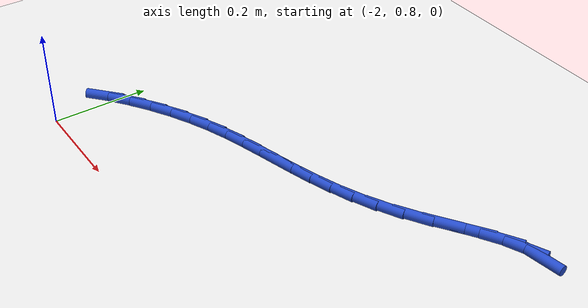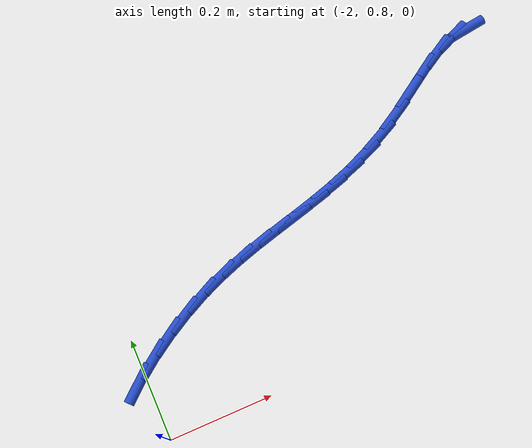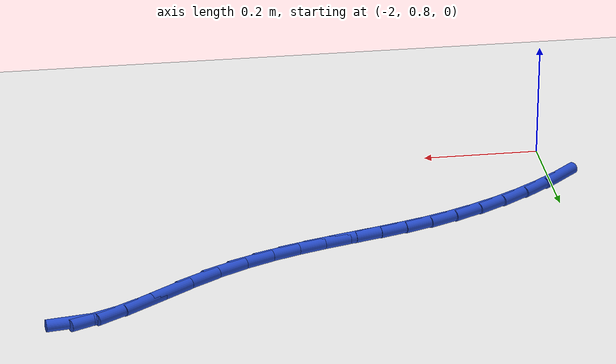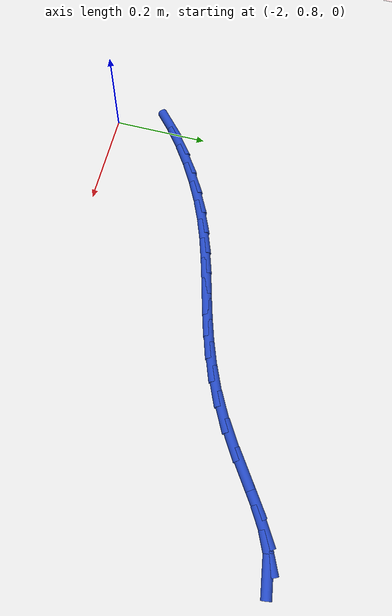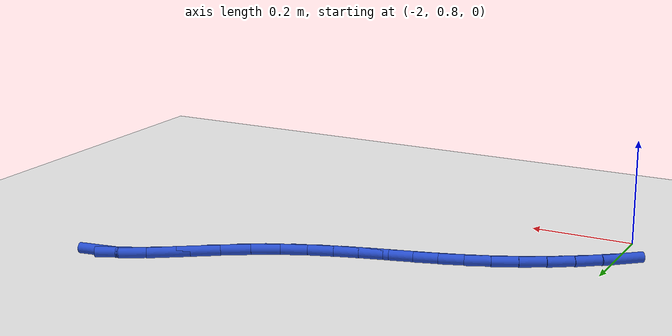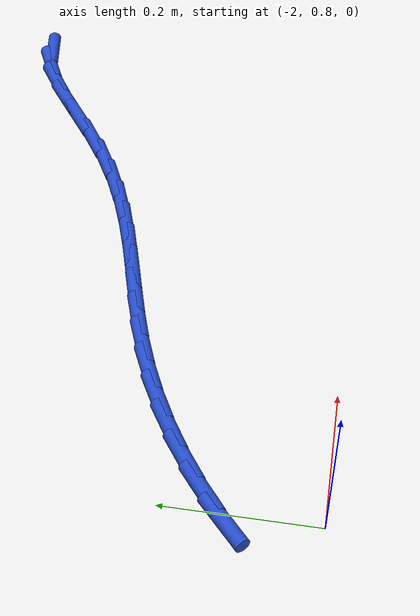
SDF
<sdf version="1.6">
 <world name="default">
  <model name="ground_plane">
   <static>1</static>
   <link name="link">
    <collision name="collision">
     <geometry><plane><normal>0 0 1</normal><size>100 100</size></plane></geometry>
     <surface><friction><ode><mu>100</mu><mu2>50</mu2></ode></friction></surface>
    </collision>
    <visual name="visual">
     <cast_shadows>0</cast_shadows>
     <geometry><plane><normal>0 0 1</normal><size>100 100</size></plane></geometry>
     <material>
      <script><uri>file://media/materials/scripts/gazebo.material</uri><name>Gazebo/WhiteGlow</name></script>
     </material>
    </visual>
   </link>
  </model>
  <model name="line">
   <link name="link_40">
    <pose>-1.1478602824353137 1.3179577333398131 0.01 0 1.57 0.14723987993688775</pose>
    <collision name="collision">
     <geometry><cylinder><radius>0.01</radius><length>0.08</length></cylinder></geometry>
    </collision>
    <visual name="visual">
     <material>
      <script><name>Gazebo/Blue</name><uri>file://media/materials/scripts/gazebo.material</uri></script>
     </material>
     <geometry><cylinder><radius>0.01</radius><length>0.08</length></cylinder></geometry>
    </visual>
   </link>
   <link name="link_41">
    <pose>-1.1834461508242995 1.3126798785496088 0.01 0 1.57 0.4152922864736502</pose>
    <collision name="collision">
     <geometry><cylinder><radius>0.01</radius><length>0.08</length></cylinder></geometry>
    </collision>
    <visual name="visual">
     <material>
      <script><name>Gazebo/Blue</name><uri>file://media/materials/scripts/gazebo.material</uri></script>
     </material>
     <geometry><cylinder><radius>0.01</radius><length>0.08</length></cylinder></geometry>
    </visual>
   </link>
   <link name="link_42">
    <pose>-1.223568455358852 1.2949884381819365 0.01 0 1.57 0.5419102771159844</pose>
    <collision name="collision">
     <geometry><cylinder><radius>0.01</radius><length>0.08</length></cylinder></geometry>
    </collision>
    <visual name="visual">
     <material>
      <script><name>Gazebo/Blue</name><uri>file://media/materials/scripts/gazebo.material</uri></script>
     </material>
     <geometry><cylinder><radius>0.01</radius><length>0.08</length></cylinder></geometry>
    </visual>
   </link>
   <link name="link_43">
    <pose>-1.2670361797257603 1.2688195956767516 0.01 0 1.57 0.5924704917500305</pose>
    <collision name="collision">
     <geometry><cylinder><radius>0.01</radius><length>0.08</length></cylinder></geometry>
    </collision>
    <visual name="visual">
     <material>
      <script><name>Gazebo/Blue</name><uri>file://media/materials/scripts/gazebo.material</uri></script>
     </material>
     <geometry><cylinder><radius>0.01</radius><length>0.08</length></cylinder></geometry>
    </visual>
   </link>
   <link name="link_44">
    <pose>-1.3126583076118121 1.2381095344740076 0.01 0 1.57 0.5918282268407821</pose>
    <collision name="collision">
     <geometry><cylinder><radius>0.01</radius><length>0.08</length></cylinder></geometry>
    </collision>
    <visual name="visual">
     <material>
      <script><name>Gazebo/Blue</name><uri>file://media/materials/scripts/gazebo.material</uri></script>
     </material>
     <geometry><cylinder><radius>0.01</radius><length>0.08</length></cylinder></geometry>
    </visual>
   </link>
   <link name="link_45">
    <pose>-1.3592438227037944 1.2067944380136586 0.01 0 1.57 0.5440300993520716</pose>
    <collision name="collision">
     <geometry><cylinder><radius>0.01</radius><length>0.08</length></cylinder></geometry>
    </collision>
    <visual name="visual">
     <material>
      <script><name>Gazebo/Blue</name><uri>file://media/materials/scripts/gazebo.material</uri></script>
     </material>
     <geometry><cylinder><radius>0.01</radius><length>0.08</length></cylinder></geometry>
    </visual>
   </link>
   <link name="link_46">
    <pose>-1.4056209008960523 1.1787399649979278 0.01 0 1.57 0.4687645041360836</pose>
    <collision name="collision">
     <geometry><cylinder><radius>0.01</radius><length>0.08</length></cylinder></geometry>
    </collision>
    <visual name="visual">
     <material>
      <script><name>Gazebo/Blue</name><uri>file://media/materials/scripts/gazebo.material</uri></script>
     </material>
     <geometry><cylinder><radius>0.01</radius><length>0.08</length></cylinder></geometry>
    </visual>
   </link>
   <link name="link_47">
    <pose>-1.4512044041170242 1.1556559054744895 0.01 0 1.57 0.3986505613362843</pose>
    <collision name="collision">
     <geometry><cylinder><radius>0.01</radius><length>0.08</length></cylinder></geometry>
    </collision>
    <visual name="visual">
     <material>
      <script><name>Gazebo/Blue</name><uri>file://media/materials/scripts/gazebo.material</uri></script>
     </material>
     <geometry><cylinder><radius>0.01</radius><length>0.08</length></cylinder></geometry>
    </visual>
   </link>
   <link name="link_48">
    <pose>-1.4960901188673854 1.1367498867394121 0.01 0 1.57 0.3396456490612573</pose>
    <collision name="collision">
     <geometry><cylinder><radius>0.01</radius><length>0.08</length></cylinder></geometry>
    </collision>
    <visual name="visual">
     <material>
      <script><name>Gazebo/Blue</name><uri>file://media/materials/scripts/gazebo.material</uri></script>
     </material>
     <geometry><cylinder><radius>0.01</radius><length>0.08</length></cylinder></geometry>
    </visual>
   </link>
   <link name="link_49">
    <pose>-1.540412002763732 1.1210892704142041 0.01 0 1.57 0.29522009134099886</pose>
    <collision name="collision">
     <geometry><cylinder><radius>0.01</radius><length>0.08</length></cylinder></geometry>
    </collision>
    <visual name="visual">
     <material>
      <script><name>Gazebo/Blue</name><uri>file://media/materials/scripts/gazebo.material</uri></script>
     </material>
     <geometry><cylinder><radius>0.01</radius><length>0.08</length></cylinder></geometry>
    </visual>
   </link>
   <link name="link_50">
    <pose>-1.5843040134226627 1.1077414181203746 0.01 0 1.57 0.2679140729212931</pose>
    <collision name="collision">
     <geometry><cylinder><radius>0.01</radius><length>0.08</length></cylinder></geometry>
    </collision>
    <visual name="visual">
     <material>
      <script><name>Gazebo/Blue</name><uri>file://media/materials/scripts/gazebo.material</uri></script>
     </material>
     <geometry><cylinder><radius>0.01</radius><length>0.08</length></cylinder></geometry>
    </visual>
   </link>
   <link name="link_51">
    <pose>-1.6279001084607747 1.095773691479432 0.01 0 1.57 0.25926499721534324</pose>
    <collision name="collision">
     <geometry><cylinder><radius>0.01</radius><length>0.08</length></cylinder></geometry>
    </collision>
    <visual name="visual">
     <material>
      <script><name>Gazebo/Blue</name><uri>file://media/materials/scripts/gazebo.material</uri></script>
     </material>
     <geometry><cylinder><radius>0.01</radius><length>0.08</length></cylinder></geometry>
    </visual>
   </link>
   <link name="link_52">
    <pose>-1.671334245494664 1.0842534521128848 0.01 0 1.57 0.26983712389195036</pose>
    <collision name="collision">
     <geometry><cylinder><radius>0.01</radius><length>0.08</length></cylinder></geometry>
    </collision>
    <visual name="visual">
     <material>
      <script><name>Gazebo/Blue</name><uri>file://media/materials/scripts/gazebo.material</uri></script>
     </material>
     <geometry><cylinder><radius>0.01</radius><length>0.08</length></cylinder></geometry>
    </visual>
   </link>
   <link name="link_53">
    <pose>-1.7147403821409293 1.0722480616422416 0.01 0 1.57 0.2992302851891857</pose>
    <collision name="collision">
     <geometry><cylinder><radius>0.01</radius><length>0.08</length></cylinder></geometry>
    </collision>
    <visual name="visual">
     <material>
      <script><name>Gazebo/Blue</name><uri>file://media/materials/scripts/gazebo.material</uri></script>
     </material>
     <geometry><cylinder><radius>0.01</radius><length>0.08</length></cylinder></geometry>
    </visual>
   </link>
   <link name="link_54">
    <pose>-1.7582524760161675 1.0588248816890113 0.01 0 1.57 0.34601854716499</pose>
    <collision name="collision">
     <geometry><cylinder><radius>0.01</radius><length>0.08</length></cylinder></geometry>
    </collision>
    <visual name="visual">
     <material>
      <script><name>Gazebo/Blue</name><uri>file://media/materials/scripts/gazebo.material</uri></script>
     </material>
     <geometry><cylinder><radius>0.01</radius><length>0.08</length></cylinder></geometry>
    </visual>
   </link>
   <link name="link_55">
    <pose>-1.8020044847369758 1.0430512738747026 0.01 0 1.57 0.40609576984024304</pose>
    <collision name="collision">
     <geometry><cylinder><radius>0.01</radius><length>0.08</length></cylinder></geometry>
    </collision>
    <visual name="visual">
     <material>
      <script><name>Gazebo/Blue</name><uri>file://media/materials/scripts/gazebo.material</uri></script>
     </material>
     <geometry><cylinder><radius>0.01</radius><length>0.08</length></cylinder></geometry>
    </visual>
   </link>
   <link name="link_56">
    <pose>-1.8460593371289398 1.0241078068059202 0.01 0 1.57 0.46761730242271554</pose>
    <collision name="collision">
     <geometry><cylinder><radius>0.01</radius><length>0.08</length></cylinder></geometry>
    </collision>
    <visual name="visual">
     <material>
      <script><name>Gazebo/Blue</name><uri>file://media/materials/scripts/gazebo.material</uri></script>
     </material>
     <geometry><cylinder><radius>0.01</radius><length>0.08</length></cylinder></geometry>
    </visual>
   </link>
   <link name="link_57">
    <pose>-1.890019304321067 1.0019092537441263 0.01 0 1.57 0.5280268091726366</pose>
    <collision name="collision">
     <geometry><cylinder><radius>0.01</radius><length>0.08</length></cylinder></geometry>
    </collision>
    <visual name="visual">
     <material>
      <script><name>Gazebo/Blue</name><uri>file://media/materials/scripts/gazebo.material</uri></script>
     </material>
     <geometry><cylinder><radius>0.01</radius><length>0.08</length></cylinder></geometry>
    </visual>
   </link>
   <link name="link_58">
    <pose>-1.933302910636562 0.9766632469676643 0.01 0 1.57 0.5891253522813282</pose>
    <collision name="collision">
     <geometry><cylinder><radius>0.01</radius><length>0.08</length></cylinder></geometry>
    </collision>
    <visual name="visual">
     <material>
      <script><name>Gazebo/Blue</name><uri>file://media/materials/scripts/gazebo.material</uri></script>
     </material>
     <geometry><cylinder><radius>0.01</radius><length>0.08</length></cylinder></geometry>
    </visual>
   </link>
   <link name="link_59">
    <pose>-1.9753282027525287 0.9485781800359614 0.01 0 1.57 0.6526268983144646</pose>
    <collision name="collision">
     <geometry><cylinder><radius>0.01</radius><length>0.08</length></cylinder></geometry>
    </collision>
    <visual name="visual">
     <material>
      <script><name>Gazebo/Blue</name><uri>file://media/materials/scripts/gazebo.material</uri></script>
     </material>
     <geometry><cylinder><radius>0.01</radius><length>0.08</length></cylinder></geometry>
    </visual>
   </link>
   <link name="link_60">
    <pose>-2.015513227346071 0.9178624465084436 0.01 0 1.57 0.7202613249780546</pose>
    <collision name="collision">
     <geometry><cylinder><radius>0.01</radius><length>0.08</length></cylinder></geometry>
    </collision>
    <visual name="visual">
     <material>
      <script><name>Gazebo/Blue</name><uri>file://media/materials/scripts/gazebo.material</uri></script>
     </material>
     <geometry><cylinder><radius>0.01</radius><length>0.08</length></cylinder></geometry>
    </visual>
   </link>
  </model>
 </world>
</sdf>
